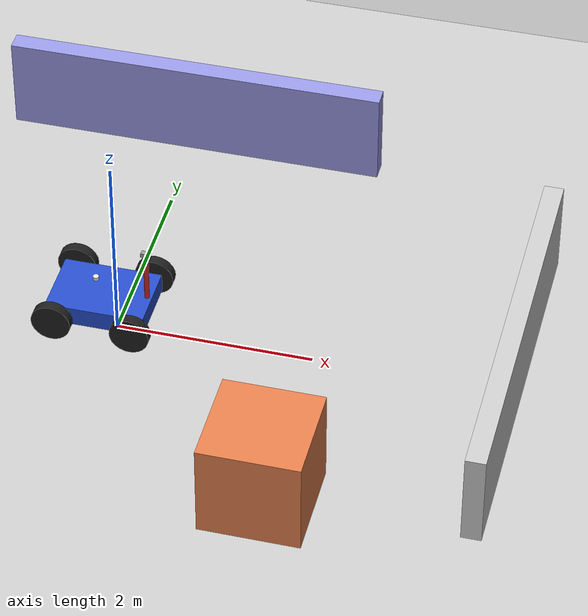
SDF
<sdf version="1.7">

	<world name="test_world">
		<plugin
			filename="ignition-gazebo-physics-system"
			name="gz::sim::systems::Physics">
		</plugin>
		<plugin
			filename="ignition-gazebo-sensors-system"
			name="gz::sim::systems::Sensors">
			<render_engine>ogre</render_engine>
		</plugin>
		<plugin
			filename="ignition-gazebo-user-commands-system"
			name="gz::sim::systems::UserCommands">
		</plugin>
		<plugin
			filename="ignition-gazebo-scene-broadcaster-system"
			name="gz::sim::systems::SceneBroadcaster">
		</plugin>

		<include>
			<uri>
			https://fuel.gazebosim.org/1.0/OpenRobotics/models/Sun
			</uri>
		</include>

		<include>
			<uri>
				ground_plane
			</uri>
		</include>

        <include>
			<pose>0 0 0.5 0 0 0</pose>
            <uri>robot_rover</uri>
        </include>

	<!-- Simple SLAM test obstacles -->
    <model name="slam_wall_front">
      <static>true</static>
      <pose>4 0 0.5 0 0 0</pose>
      <link name="link">
        <collision name="collision">
          <geometry>
            <box>
              <size>0.2 4.0 1.0</size>
            </box>
          </geometry>
        </collision>
        <visual name="visual">
          <geometry>
            <box>
              <size>0.2 4.0 1.0</size>
            </box>
          </geometry>
          <material>
            <diffuse>0.8 0.8 0.8 1</diffuse>
          </material>
        </visual>
      </link>
    </model>

    <model name="slam_wall_left">
      <static>true</static>
      <pose>0 3 0.5 0 0 0</pose>
      <link name="link">
        <collision name="collision">
          <geometry>
            <box>
              <size>4.0 0.2 1.0</size>
            </box>
          </geometry>
        </collision>
        <visual name="visual">
          <geometry>
            <box>
              <size>4.0 0.2 1.0</size>
            </box>
          </geometry>
          <material>
            <diffuse>0.6 0.6 0.9 1</diffuse>
          </material>
        </visual>
      </link>
    </model>

    <model name="slam_box_1">
      <static>true</static>
      <pose>2 -2 0.5 0 0 0</pose>
      <link name="link">
        <collision name="collision">
          <geometry>
            <box>
              <size>1.0 1.0 1.0</size>
            </box>
          </geometry>
        </collision>
        <visual name="visual">
          <geometry>
            <box>
              <size>1.0 1.0 1.0</size>
            </box>
          </geometry>
          <material>
            <diffuse>0.9 0.5 0.3 1</diffuse>
          </material>
        </visual>
      </link>
    </model>

	</world>
</sdf>

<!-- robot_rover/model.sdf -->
<sdf version='1.7'>
  <model name='rover_robot'>
    <link name='body'>
      <inertial>
        <mass>1</mass>
        <inertia>
          <ixx>0.166667</ixx>
          <ixy>0</ixy>
          <ixz>0</ixz>
          <iyy>0.166667</iyy>
          <iyz>0</iyz>
          <izz>0.166667</izz>
        </inertia>
        <pose>0 0 0 0 -0 0</pose>
      </inertial>
      <pose>-0.129 0 -0.142857 0 -0 0</pose>
      <gravity>1</gravity>
      <self_collide>0</self_collide>
      <kinematic>0</kinematic>
      <enable_wind>0</enable_wind>
      <visual name='visual'>
        <pose>0 0 0 0 -0 0</pose>
        <geometry>
          <box>
            <size>1 0.7 0.2</size>
          </box>
        </geometry>
        <material>
          <lighting>1</lighting>
          <script>
            <uri>file://media/materials/scripts/gazebo.material</uri>
            <name>Gazebo/Blue</name>
          </script>
          <shader type='pixel'>
            <normal_map>__default__</normal_map>
          </shader>
          <ambient>0.0 0.0 0.4 1</ambient>
          <diffuse>0.0 0.0 0.8 1</diffuse>
          <specular>0.1 0.1 0.1 1</specular>
          <emissive>0 0 0 1</emissive>
        </material>
        <transparency>0</transparency>
        <cast_shadows>1</cast_shadows>
      </visual>
      <collision name='collision'>
        <laser_retro>0</laser_retro>
        <max_contacts>10</max_contacts>
        <pose>0 0 0 0 -0 0</pose>
        <geometry>
          <box>
            <size>1 0.7 0.2</size>
          </box>
        </geometry>
        <surface>
          <friction>
            <ode>
              <mu>1</mu>
              <mu2>1</mu2>
              <fdir1>0 0 0</fdir1>
              <slip1>0</slip1>
              <slip2>0</slip2>
            </ode>
            <torsional>
              <coefficient>1</coefficient>
              <patch_radius>0</patch_radius>
              <surface_radius>0</surface_radius>
              <use_patch_radius>1</use_patch_radius>
              <ode>
                <slip>0</slip>
              </ode>
            </torsional>
          </friction>
          <bounce>
            <restitution_coefficient>0</restitution_coefficient>
            <threshold>1e+06</threshold>
          </bounce>
          <contact>
            <collide_without_contact>0</collide_without_contact>
            <collide_without_contact_bitmask>1</collide_without_contact_bitmask>
            <collide_bitmask>1</collide_bitmask>
            <ode>
              <soft_cfm>0</soft_cfm>
              <soft_erp>0.2</soft_erp>
              <kp>1e+13</kp>
              <kd>1</kd>
              <max_vel>0.01</max_vel>
              <min_depth>0</min_depth>
            </ode>
            <bullet>
              <split_impulse>1</split_impulse>
              <split_impulse_penetration_threshold>-0.01</split_impulse_penetration_threshold>
              <soft_cfm>0</soft_cfm>
              <soft_erp>0.2</soft_erp>
              <kp>1e+13</kp>
              <kd>1</kd>
            </bullet>
          </contact>
        </surface>
      </collision>
      <sensor name="imu_sensor" type="imu">
        <always_on>true</always_on>
        <update_rate>50</update_rate>
        <topic>/imu</topic>
        <visualize>false</visualize>
      </sensor>
    </link>
    <link name='front_left_wheel'>
      <inertial>
        <mass>1</mass>
        <inertia>
          <ixx>0.145833</ixx>
          <ixy>0</ixy>
          <ixz>0</ixz>
          <iyy>0.145833</iyy>
          <iyz>0</iyz>
          <izz>0.125</izz>
        </inertia>
        <pose>0 0 0 0 -0 0</pose>
      </inertial>
      <pose>0.271 0.45 -0.142857 1.57079 -0 0</pose>
      <gravity>1</gravity>
      <self_collide>0</self_collide>
      <kinematic>0</kinematic>
      <enable_wind>0</enable_wind>
      <visual name='visual'>
        <pose>0 0 0 0 -0 0</pose>
        <geometry>
          <cylinder>
            <radius>0.2</radius>
            <length>0.1</length>
          </cylinder>
        </geometry>
        <material>
          <lighting>1</lighting>
          <script>
            <uri>file://media/materials/scripts/gazebo.material</uri>
            <name>Gazebo/Black</name>
          </script>
          <shader type='pixel'>
            <normal_map>__default__</normal_map>
          </shader>
          <ambient>0.05 0.05 0.05 1</ambient>
          <diffuse>0.1 0.1 0.1 1</diffuse>
          <specular>0.02 0.02 0.02 1</specular>
          <emissive>0 0 0 1</emissive>
        </material>
        <transparency>0</transparency>
        <cast_shadows>1</cast_shadows>
      </visual>
      <collision name='collision'>
        <laser_retro>0</laser_retro>
        <max_contacts>10</max_contacts>
        <pose>0 0 0 0 -0 0</pose>
        <geometry>
          <cylinder>
            <radius>0.2</radius>
            <length>0.1</length>
          </cylinder>
        </geometry>
        <surface>
          <friction>
            <ode>
              <mu>1</mu>
              <mu2>1</mu2>
              <fdir1>0 0 0</fdir1>
              <slip1>0</slip1>
              <slip2>0</slip2>
            </ode>
            <torsional>
              <coefficient>1</coefficient>
              <patch_radius>0</patch_radius>
              <surface_radius>0</surface_radius>
              <use_patch_radius>1</use_patch_radius>
              <ode>
                <slip>0</slip>
              </ode>
            </torsional>
          </friction>
          <bounce>
            <restitution_coefficient>0</restitution_coefficient>
            <threshold>1e+06</threshold>
          </bounce>
          <contact>
            <collide_without_contact>0</collide_without_contact>
            <collide_without_contact_bitmask>1</collide_without_contact_bitmask>
            <collide_bitmask>1</collide_bitmask>
            <ode>
              <soft_cfm>0</soft_cfm>
              <soft_erp>0.2</soft_erp>
              <kp>1e+13</kp>
              <kd>1</kd>
              <max_vel>0.01</max_vel>
              <min_depth>0</min_depth>
            </ode>
            <bullet>
              <split_impulse>1</split_impulse>
              <split_impulse_penetration_threshold>-0.01</split_impulse_penetration_threshold>
              <soft_cfm>0</soft_cfm>
              <soft_erp>0.2</soft_erp>
              <kp>1e+13</kp>
              <kd>1</kd>
            </bullet>
          </contact>
        </surface>
      </collision>
    </link>
    <link name='rear_left_wheel'>
      <inertial>
        <mass>1</mass>
        <inertia>
          <ixx>0.145833</ixx>
          <ixy>0</ixy>
          <ixz>0</ixz>
          <iyy>0.145833</iyy>
          <iyz>0</iyz>
          <izz>0.125</izz>
        </inertia>
        <pose>0 0 0 0 -0 0</pose>
      </inertial>
      <pose>-0.529 0.45 -0.142857 1.57079 -0 0</pose>
      <gravity>1</gravity>
      <self_collide>0</self_collide>
      <kinematic>0</kinematic>
      <enable_wind>0</enable_wind>
      <visual name='visual'>
        <pose>0 0 0 0 -0 0</pose>
        <geometry>
          <cylinder>
            <radius>0.2</radius>
            <length>0.1</length>
          </cylinder>
        </geometry>
        <material>
          <lighting>1</lighting>
          <script>
            <uri>file://media/materials/scripts/gazebo.material</uri>
            <name>Gazebo/Black</name>
          </script>
          <shader type='pixel'>
            <normal_map>__default__</normal_map>
          </shader>
          <ambient>0.05 0.05 0.05 1</ambient>
          <diffuse>0.1 0.1 0.1 1</diffuse>
          <specular>0.02 0.02 0.02 1</specular>
          <emissive>0 0 0 1</emissive>
        </material>
        <transparency>0</transparency>
        <cast_shadows>1</cast_shadows>
      </visual>
      <collision name='collision'>
        <laser_retro>0</laser_retro>
        <max_contacts>10</max_contacts>
        <pose>0 0 0 0 -0 0</pose>
        <geometry>
          <cylinder>
            <radius>0.2</radius>
            <length>0.1</length>
          </cylinder>
        </geometry>
        <surface>
          <friction>
            <ode>
              <mu>1</mu>
              <mu2>1</mu2>
              <fdir1>0 0 0</fdir1>
              <slip1>0</slip1>
              <slip2>0</slip2>
            </ode>
            <torsional>
              <coefficient>1</coefficient>
              <patch_radius>0</patch_radius>
              <surface_radius>0</surface_radius>
              <use_patch_radius>1</use_patch_radius>
              <ode>
                <slip>0</slip>
              </ode>
            </torsional>
          </friction>
          <bounce>
            <restitution_coefficient>0</restitution_coefficient>
            <threshold>1e+06</threshold>
          </bounce>
          <contact>
            <collide_without_contact>0</collide_without_contact>
            <collide_without_contact_bitmask>1</collide_without_contact_bitmask>
            <collide_bitmask>1</collide_bitmask>
            <ode>
              <soft_cfm>0</soft_cfm>
              <soft_erp>0.2</soft_erp>
              <kp>1e+13</kp>
              <kd>1</kd>
              <max_vel>0.01</max_vel>
              <min_depth>0</min_depth>
            </ode>
            <bullet>
              <split_impulse>1</split_impulse>
              <split_impulse_penetration_threshold>-0.01</split_impulse_penetration_threshold>
              <soft_cfm>0</soft_cfm>
              <soft_erp>0.2</soft_erp>
              <kp>1e+13</kp>
              <kd>1</kd>
            </bullet>
          </contact>
        </surface>
      </collision>
    </link>
    <link name='front_right_wheel'>
      <inertial>
        <mass>1</mass>
        <inertia>
          <ixx>0.145833</ixx>
          <ixy>0</ixy>
          <ixz>0</ixz>
          <iyy>0.145833</iyy>
          <iyz>0</iyz>
          <izz>0.125</izz>
        </inertia>
        <pose>0 0 0 0 -0 0</pose>
      </inertial>
      <pose>0.271 -0.45 -0.142857 1.57079 -0 0</pose>
      <gravity>1</gravity>
      <self_collide>0</self_collide>
      <kinematic>0</kinematic>
      <enable_wind>0</enable_wind>
      <visual name='visual'>
        <pose>0 0 0 0 -0 0</pose>
        <geometry>
          <cylinder>
            <radius>0.2</radius>
            <length>0.1</length>
          </cylinder>
        </geometry>
        <material>
          <lighting>1</lighting>
          <script>
            <uri>file://media/materials/scripts/gazebo.material</uri>
            <name>Gazebo/Black</name>
          </script>
          <shader type='pixel'>
            <normal_map>__default__</normal_map>
          </shader>
          <ambient>0.05 0.05 0.05 1</ambient>
          <diffuse>0.1 0.1 0.1 1</diffuse>
          <specular>0.02 0.02 0.02 1</specular>
          <emissive>0 0 0 1</emissive>
        </material>
        <transparency>0</transparency>
        <cast_shadows>1</cast_shadows>
      </visual>
      <collision name='collision'>
        <laser_retro>0</laser_retro>
        <max_contacts>10</max_contacts>
        <pose>0 0 0 0 -0 0</pose>
        <geometry>
          <cylinder>
            <radius>0.2</radius>
            <length>0.1</length>
          </cylinder>
        </geometry>
        <surface>
          <friction>
            <ode>
              <mu>1</mu>
              <mu2>1</mu2>
              <fdir1>0 0 0</fdir1>
              <slip1>0</slip1>
              <slip2>0</slip2>
            </ode>
            <torsional>
              <coefficient>1</coefficient>
              <patch_radius>0</patch_radius>
              <surface_radius>0</surface_radius>
              <use_patch_radius>1</use_patch_radius>
              <ode>
                <slip>0</slip>
              </ode>
            </torsional>
          </friction>
          <bounce>
            <restitution_coefficient>0</restitution_coefficient>
            <threshold>1e+06</threshold>
          </bounce>
          <contact>
            <collide_without_contact>0</collide_without_contact>
            <collide_without_contact_bitmask>1</collide_without_contact_bitmask>
            <collide_bitmask>1</collide_bitmask>
            <ode>
              <soft_cfm>0</soft_cfm>
              <soft_erp>0.2</soft_erp>
              <kp>1e+13</kp>
              <kd>1</kd>
              <max_vel>0.01</max_vel>
              <min_depth>0</min_depth>
            </ode>
            <bullet>
              <split_impulse>1</split_impulse>
              <split_impulse_penetration_threshold>-0.01</split_impulse_penetration_threshold>
              <soft_cfm>0</soft_cfm>
              <soft_erp>0.2</soft_erp>
              <kp>1e+13</kp>
              <kd>1</kd>
            </bullet>
          </contact>
        </surface>
      </collision>
    </link>
    <link name='rear_right_wheel'>
      <inertial>
        <mass>1</mass>
        <inertia>
          <ixx>0.145833</ixx>
          <ixy>0</ixy>
          <ixz>0</ixz>
          <iyy>0.145833</iyy>
          <iyz>0</iyz>
          <izz>0.125</izz>
        </inertia>
        <pose>0 0 0 0 -0 0</pose>
      </inertial>
      <pose>-0.529 -0.45 -0.142857 1.57079 -0 0</pose>
      <gravity>1</gravity>
      <self_collide>0</self_collide>
      <kinematic>0</kinematic>
      <enable_wind>0</enable_wind>
      <visual name='visual'>
        <pose>0 0 0 0 -0 0</pose>
        <geometry>
          <cylinder>
            <radius>0.2</radius>
            <length>0.1</length>
          </cylinder>
        </geometry>
        <material>
          <lighting>1</lighting>
          <script>
            <uri>file://media/materials/scripts/gazebo.material</uri>
            <name>Gazebo/Black</name>
          </script>
          <shader type='pixel'>
            <normal_map>__default__</normal_map>
          </shader>
          <ambient>0.05 0.05 0.05 1</ambient>
          <diffuse>0.1 0.1 0.1 1</diffuse>
          <specular>0.02 0.02 0.02 1</specular>
          <emissive>0 0 0 1</emissive>
        </material>
        <transparency>0</transparency>
        <cast_shadows>1</cast_shadows>
      </visual>
      <collision name='collision'>
        <laser_retro>0</laser_retro>
        <max_contacts>10</max_contacts>
        <pose>0 0 0 0 -0 0</pose>
        <geometry>
          <cylinder>
            <radius>0.2</radius>
            <length>0.1</length>
          </cylinder>
        </geometry>
        <surface>
          <friction>
            <ode>
              <mu>1</mu>
              <mu2>1</mu2>
              <fdir1>0 0 0</fdir1>
              <slip1>0</slip1>
              <slip2>0</slip2>
            </ode>
            <torsional>
              <coefficient>1</coefficient>
              <patch_radius>0</patch_radius>
              <surface_radius>0</surface_radius>
              <use_patch_radius>1</use_patch_radius>
              <ode>
                <slip>0</slip>
              </ode>
            </torsional>
          </friction>
          <bounce>
            <restitution_coefficient>0</restitution_coefficient>
            <threshold>1e+06</threshold>
          </bounce>
          <contact>
            <collide_without_contact>0</collide_without_contact>
            <collide_without_contact_bitmask>1</collide_without_contact_bitmask>
            <collide_bitmask>1</collide_bitmask>
            <ode>
              <soft_cfm>0</soft_cfm>
              <soft_erp>0.2</soft_erp>
              <kp>1e+13</kp>
              <kd>1</kd>
              <max_vel>0.01</max_vel>
              <min_depth>0</min_depth>
            </ode>
            <bullet>
              <split_impulse>1</split_impulse>
              <split_impulse_penetration_threshold>-0.01</split_impulse_penetration_threshold>
              <soft_cfm>0</soft_cfm>
              <soft_erp>0.2</soft_erp>
              <kp>1e+13</kp>
              <kd>1</kd>
            </bullet>
          </contact>
        </surface>
      </collision>
    </link>
    <link name='holder'>
      <inertial>
        <mass>1</mass>
        <inertia>
          <ixx>0.145833</ixx>
          <ixy>0</ixy>
          <ixz>0</ixz>
          <iyy>0.145833</iyy>
          <iyz>0</iyz>
          <izz>0.125</izz>
        </inertia>
        <pose>0 0 0 0 -0 0</pose>
      </inertial>
      <pose>0.321 0 0.207143 0 -0 0</pose>
      <gravity>1</gravity>
      <self_collide>0</self_collide>
      <kinematic>0</kinematic>
      <enable_wind>0</enable_wind>
      <visual name='visual'>
        <pose>0 0 0 0 -0 0</pose>
        <geometry>
          <cylinder>
            <radius>0.025</radius>
            <length>0.6</length>
          </cylinder>
        </geometry>
        <material>
          <lighting>1</lighting>
          <script>
            <uri>file://media/materials/scripts/gazebo.material</uri>
            <name>Gazebo/Red</name>
          </script>
          <shader type='pixel'>
            <normal_map>__default__</normal_map>
          </shader>
          <ambient>0.4 0.0 0.0 1</ambient>
          <diffuse>0.8 0.0 0.0 1</diffuse>
          <specular>0.1 0.1 0.1 1</specular>
          <emissive>0 0 0 1</emissive>
        </material>
        <transparency>0</transparency>
        <cast_shadows>1</cast_shadows>
      </visual>
      <collision name='collision'>
        <laser_retro>0</laser_retro>
        <max_contacts>10</max_contacts>
        <pose>0 0 0 0 -0 0</pose>
        <geometry>
          <cylinder>
            <radius>0.025</radius>
            <length>0.6</length>
          </cylinder>
        </geometry>
        <surface>
          <friction>
            <ode>
              <mu>1</mu>
              <mu2>1</mu2>
              <fdir1>0 0 0</fdir1>
              <slip1>0</slip1>
              <slip2>0</slip2>
            </ode>
            <torsional>
              <coefficient>1</coefficient>
              <patch_radius>0</patch_radius>
              <surface_radius>0</surface_radius>
              <use_patch_radius>1</use_patch_radius>
              <ode>
                <slip>0</slip>
              </ode>
            </torsional>
          </friction>
          <bounce>
            <restitution_coefficient>0</restitution_coefficient>
            <threshold>1e+06</threshold>
          </bounce>
          <contact>
            <collide_without_contact>0</collide_without_contact>
            <collide_without_contact_bitmask>1</collide_without_contact_bitmask>
            <collide_bitmask>1</collide_bitmask>
            <ode>
              <soft_cfm>0</soft_cfm>
              <soft_erp>0.2</soft_erp>
              <kp>1e+13</kp>
              <kd>1</kd>
              <max_vel>0.01</max_vel>
              <min_depth>0</min_depth>
            </ode>
            <bullet>
              <split_impulse>1</split_impulse>
              <split_impulse_penetration_threshold>-0.01</split_impulse_penetration_threshold>
              <soft_cfm>0</soft_cfm>
              <soft_erp>0.2</soft_erp>
              <kp>1e+13</kp>
              <kd>1</kd>
            </bullet>
          </contact>
        </surface>
      </collision>
    </link>
    <link name='cam'>
      <inertial>
        <mass>1</mass>
        <inertia>
          <ixx>0.166667</ixx>
          <ixy>0</ixy>
          <ixz>0</ixz>
          <iyy>0.166667</iyy>
          <iyz>0</iyz>
          <izz>0.166667</izz>
        </inertia>
        <pose>0 0 0 0 -0 0</pose>
      </inertial>
      <pose>0.324 0 0.507143 0 0.15 0</pose>
      <gravity>1</gravity>
      <self_collide>0</self_collide>
      <kinematic>0</kinematic>
      <enable_wind>0</enable_wind>
      <visual name='visual'>
        <pose>0 0 0 0 -0 0</pose>
        <geometry>
          <box>
            <size>0.1 0.05 0.05</size>
          </box>
        </geometry>
        <material>
          <lighting>1</lighting>
          <script>
            <uri>file://media/materials/scripts/gazebo.material</uri>
            <name>Gazebo/Grey</name>
          </script>
          <shader type='pixel'>
            <normal_map>__default__</normal_map>
          </shader>
          <ambient>0.6 0.6 0.6 1</ambient>
          <diffuse>0.9 0.9 0.9 1</diffuse>
          <specular>0.2 0.2 0.2 1</specular>
          <emissive>0 0 0 1</emissive>
        </material>
        <transparency>0</transparency>
        <cast_shadows>1</cast_shadows>
      </visual>
      <collision name='collision'>
        <laser_retro>0</laser_retro>
        <max_contacts>10</max_contacts>
        <pose>0 0 0 0 -0 0</pose>
        <geometry>
          <box>
            <size>0.1 0.05 0.05</size>
          </box>
        </geometry>
        <surface>
          <friction>
            <ode>
              <mu>1</mu>
              <mu2>1</mu2>
              <fdir1>0 0 0</fdir1>
              <slip1>0</slip1>
              <slip2>0</slip2>
            </ode>
            <torsional>
              <coefficient>1</coefficient>
              <patch_radius>0</patch_radius>
              <surface_radius>0</surface_radius>
              <use_patch_radius>1</use_patch_radius>
              <ode>
                <slip>0</slip>
              </ode>
            </torsional>
          </friction>
          <bounce>
            <restitution_coefficient>0</restitution_coefficient>
            <threshold>1e+06</threshold>
          </bounce>
          <contact>
            <collide_without_contact>0</collide_without_contact>
            <collide_without_contact_bitmask>1</collide_without_contact_bitmask>
            <collide_bitmask>1</collide_bitmask>
            <ode>
              <soft_cfm>0</soft_cfm>
              <soft_erp>0.2</soft_erp>
              <kp>1e+13</kp>
              <kd>1</kd>
              <max_vel>0.01</max_vel>
              <min_depth>0</min_depth>
            </ode>
            <bullet>
              <split_impulse>1</split_impulse>
              <split_impulse_penetration_threshold>-0.01</split_impulse_penetration_threshold>
              <soft_cfm>0</soft_cfm>
              <soft_erp>0.2</soft_erp>
              <kp>1e+13</kp>
              <kd>1</kd>
            </bullet>
          </contact>
        </surface>
      </collision>
      <sensor name="camera" type="camera">
				<camera>
					<horizontal_fov>1.047</horizontal_fov>
					<image>
					<width>320</width>
					<height>240</height>
					</image>
					<clip>
					<near>0.1</near>
					<far>100</far>
					</clip>
				</camera>
				<always_on>1</always_on>
				<update_rate>30</update_rate>
				<visualize>true</visualize>
				<topic>camera</topic>
				</sensor>
    </link>
    <link name="lidar_link">
      <pose>-0.2 0 0.1 0 0 0</pose>

      <inertial>
        <mass>0.2</mass>
        <inertia>
          <ixx>0.001</ixx>
          <iyy>0.001</iyy>
          <izz>0.001</izz>
          <ixy>0.0</ixy>
          <ixz>0.0</ixz>
          <iyz>0.0</iyz>
        </inertia>
      </inertial>

      <collision name="lidar_collision">
        <geometry>
          <cylinder>
            <radius>0.03</radius>
            <length>0.04</length>
          </cylinder>
        </geometry>
      </collision>

      <visual name="lidar_visual">
        <geometry>
          <cylinder>
            <radius>0.03</radius>
            <length>0.04</length>
          </cylinder>
        </geometry>
          <material>
            <ambient>0.6 0.6 0.6 1</ambient>
            <diffuse>0.9 0.9 0.9 1</diffuse>
            <specular>0.2 0.2 0.2 1</specular>
          </material>
      </visual>

      <sensor name="lidar_sensor" type="gpu_lidar">
        <topic>/scan</topic>
        <update_rate>10</update_rate>
        <visualize>true</visualize>
        <always_on>true</always_on>
        <pose>0 0 0 0 0 0</pose>

        <lidar>
          <scan>
            <horizontal>
              <samples>720</samples>
              <resolution>1</resolution>
              <min_angle>-1.5708</min_angle>
              <max_angle>1.5708</max_angle>
            </horizontal>
          </scan>
          <range>
            <min>0.7</min>
            <max>12.0</max>
            <resolution>0.01</resolution>
          </range>
        </lidar>
      </sensor>
    </link>
    <joint name="lidar_joint" type="fixed">
      <parent>body</parent>
      <child>lidar_link</child>
    </joint>
    <joint name='front_left_wheel_joint' type='revolute'>
      <parent>body</parent>
      <child>front_left_wheel</child>
      <pose>0 0 0 0 -0 0</pose>
      <axis>
        <xyz>-0 -0 -1</xyz>
        <limit>
          <lower>-1.79769e+308</lower>
          <upper>1.79769e+308</upper>
          <effort>-1</effort>
          <velocity>-1</velocity>
        </limit>
        <dynamics>
          <spring_reference>0</spring_reference>
          <spring_stiffness>0</spring_stiffness>
          <damping>0</damping>
        </dynamics>
      </axis>
      <physics>
        <ode>
          <limit>
            <cfm>0</cfm>
            <erp>0.2</erp>
          </limit>
          <suspension>
            <cfm>0</cfm>
            <erp>0.2</erp>
          </suspension>
        </ode>
      </physics>
    </joint>
    <joint name='rear_left_wheel_joint' type='revolute'>
      <parent>body</parent>
      <child>rear_left_wheel</child>
      <pose>0 0 0 0 -0 0</pose>
      <axis>
        <xyz>0 0 -1</xyz>
        <limit>
          <lower>-1.79769e+308</lower>
          <upper>1.79769e+308</upper>
          <effort>-1</effort>
          <velocity>-1</velocity>
        </limit>
        <dynamics>
          <spring_reference>0</spring_reference>
          <spring_stiffness>0</spring_stiffness>
          <damping>0</damping>
          <friction>0</friction>
        </dynamics>
      </axis>
      <physics>
        <ode>
          <limit>
            <cfm>0</cfm>
            <erp>0.2</erp>
          </limit>
          <suspension>
            <cfm>0</cfm>
            <erp>0.2</erp>
          </suspension>
        </ode>
      </physics>
    </joint>
    <joint name='front_right_wheel_joint' type='revolute'>
      <parent>body</parent>
      <child>front_right_wheel</child>
      <pose>0 0 0 0 -0 0</pose>
      <axis>
        <xyz>0 0 -1</xyz>
        <limit>
          <lower>-1.79769e+308</lower>
          <upper>1.79769e+308</upper>
          <effort>-1</effort>
          <velocity>-1</velocity>
        </limit>
        <dynamics>
          <spring_reference>0</spring_reference>
          <spring_stiffness>0</spring_stiffness>
          <damping>0</damping>
          <friction>0</friction>
        </dynamics>
      </axis>
      <physics>
        <ode>
          <limit>
            <cfm>0</cfm>
            <erp>0.2</erp>
          </limit>
          <suspension>
            <cfm>0</cfm>
            <erp>0.2</erp>
          </suspension>
        </ode>
      </physics>
    </joint>
    <joint name='rear_right_wheel_joint' type='revolute'>
      <parent>body</parent>
      <child>rear_right_wheel</child>
      <pose>0 0 0 0 -0 0</pose>
      <axis>
        <xyz>-0 -0 -1</xyz>
        <limit>
          <lower>-1.79769e+308</lower>
          <upper>1.79769e+308</upper>
          <effort>-1</effort>
          <velocity>-1</velocity>
        </limit>
        <dynamics>
          <spring_reference>0</spring_reference>
          <spring_stiffness>0</spring_stiffness>
          <damping>0</damping>
        </dynamics>
      </axis>
      <physics>
        <ode>
          <limit>
            <cfm>0</cfm>
            <erp>0.2</erp>
          </limit>
          <suspension>
            <cfm>0</cfm>
            <erp>0.2</erp>
          </suspension>
        </ode>
      </physics>
    </joint>
    <joint name='holder_body_joint' type='fixed'>
      <parent>body</parent>
      <child>holder</child>
      <pose>0 0 0 0 -0 0</pose>
      <physics>
        <ode>
          <limit>
            <cfm>0</cfm>
            <erp>0.2</erp>
          </limit>
          <suspension>
            <cfm>0</cfm>
            <erp>0.2</erp>
          </suspension>
        </ode>
      </physics>
    </joint>
    <joint name='holder_camera_joint' type='revolute'>
      <parent>holder</parent>
      <child>cam</child>
      <pose>0 0 0 0 -0 0</pose>
      <axis>
        <xyz>0 0 1</xyz>
        <limit>
          <lower>-1.79769e+308</lower>
          <upper>1.79769e+308</upper>
          <effort>-1</effort>
          <velocity>-1</velocity>
        </limit>
        <dynamics>
          <spring_reference>0</spring_reference>
          <spring_stiffness>0</spring_stiffness>
          <damping>0.6</damping>
        </dynamics>
      </axis>
      <physics>
        <ode>
          <limit>
            <cfm>0</cfm>
            <erp>0.2</erp>
          </limit>
          <suspension>
            <cfm>0</cfm>
            <erp>0.2</erp>
          </suspension>
        </ode>
      </physics>
    </joint>
    <static>0</static>
    <allow_auto_disable>1</allow_auto_disable>

    <plugin
        filename="ignition-gazebo-diff-drive-system"
        name="gz::sim::systems::DiffDrive">
        <left_joint>rear_left_wheel_joint</left_joint>
        <left_joint>front_left_wheel_joint</left_joint>
        <right_joint>rear_right_wheel_joint</right_joint>
        <right_joint>front_right_wheel_joint</right_joint>
        <wheel_separation>0.9</wheel_separation>
        <wheel_radius>0.2</wheel_radius>
        <max_linear_acceleration>1</max_linear_acceleration>
        <min_linear_acceleration>-1</min_linear_acceleration>
        <max_angular_acceleration>2</max_angular_acceleration>
        <min_angular_acceleration>-2</min_angular_acceleration>
        <max_linear_velocity>0.5</max_linear_velocity>
        <min_linear_velocity>-0.5</min_linear_velocity>
        <max_angular_velocity>1</max_angular_velocity>
        <min_angular_velocity>-1</min_angular_velocity>
      </plugin>

      <plugin
        filename="ignition-gazebo-joint-position-controller-system"
        name="gz::sim::systems::JointPositionController">
        <joint_name>holder_camera_joint</joint_name>
        <topic>camera_pos_cmd</topic>
        <p_gain>2</p_gain>
        <i_gain>0.1</i_gain>
        <d_gain>0.01</d_gain>
        <i_max>1</i_max>
        <i_min>-1</i_min>
        <cmd_max>1000</cmd_max>
        <cmd_min>-1000</cmd_min>
      </plugin>

      <plugin
        filename="ignition-gazebo-joint-state-publisher-system"
        name="gz::sim::systems::JointStatePublisher">
        <joint_name>holder_camera_joint</joint_name>
      </plugin>

      <plugin
        filename="ignition-gazebo-imu-system"
        name="gz::sim::systems::Imu">
      </plugin>

      <plugin
        filename="ignition-gazebo-pose-publisher-system"
        name="gz::sim::systems::PosePublisher">
        <publish_link_pose>true</publish_link_pose>
        <publish_sensor_pose>false</publish_sensor_pose>
        <publish_collision_pose>false</publish_collision_pose>
        <publish_visual_pose>false</publish_visual_pose>
        <publish_nested_model_pose>false</publish_nested_model_pose>
        <use_pose_vector_msg>false</use_pose_vector_msg>
        <static_publisher>false</static_publisher>
        <static_update_frequency>1</static_update_frequency>
      </plugin>

  </model>
</sdf>
